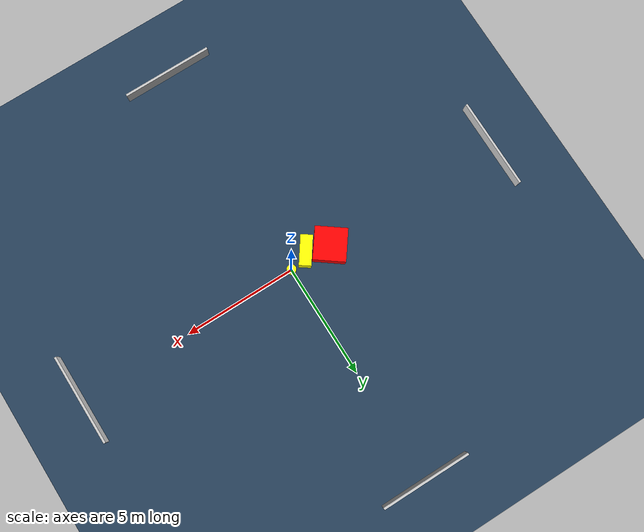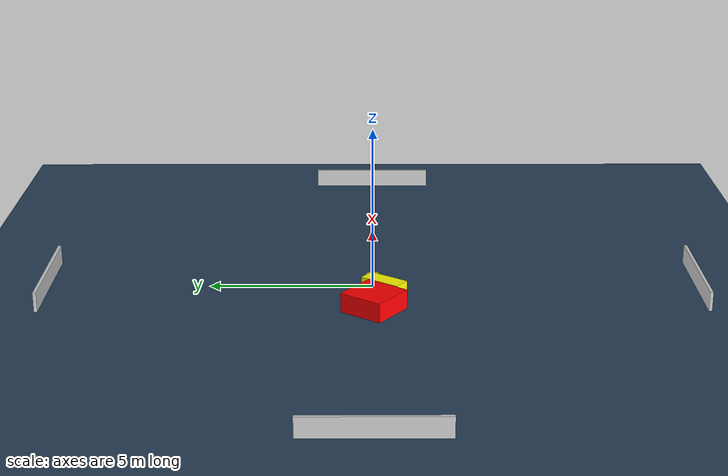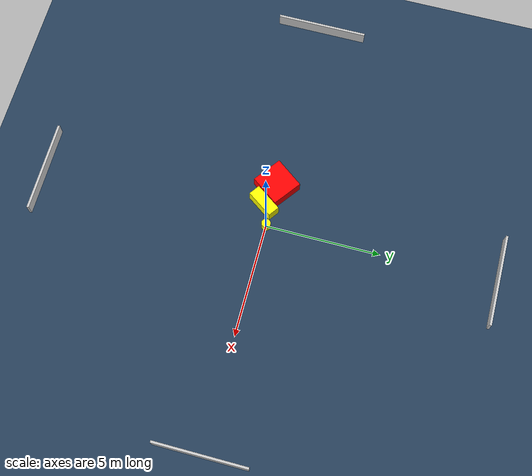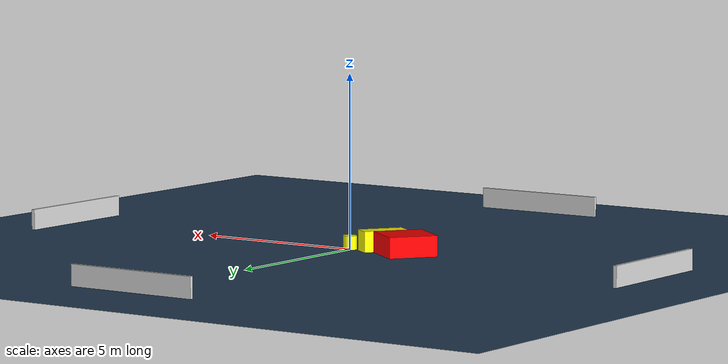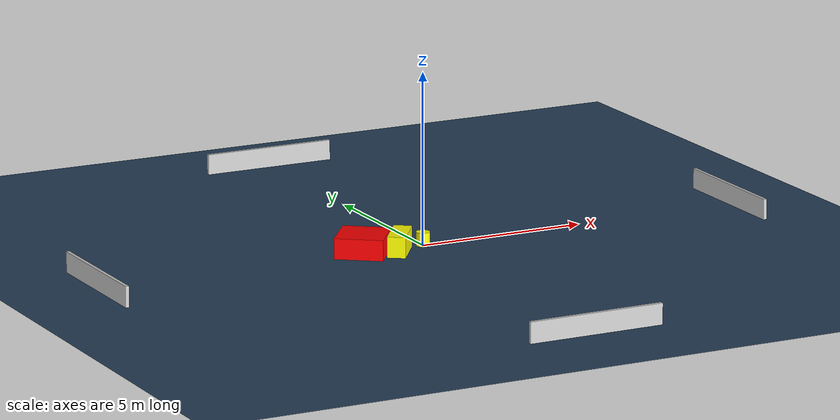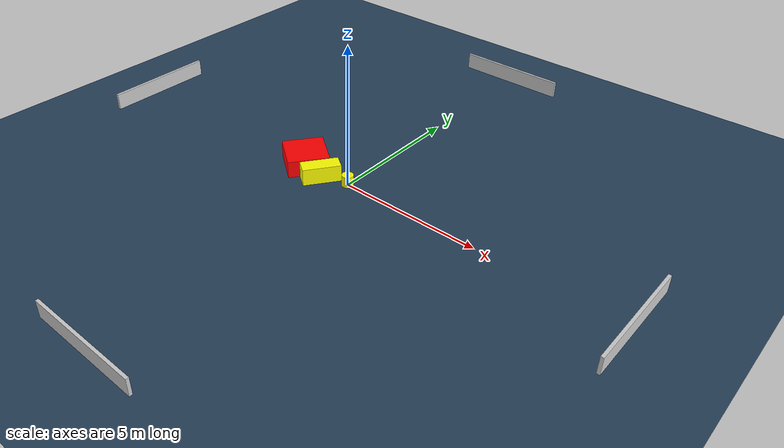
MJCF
<?xml version="1.0" ?>
<mujoco model="generated_environment">
  <option timestep="0.01" integrator="RK4" cone="elliptic"/>
  <default>
    <geom density="1"/>
  </default>
  <asset>
    <texture builtin="gradient" height="3072" name="skybox" rgb1="0.3 0.5 0.7" rgb2="0 0 0" type="skybox" width="512"/>
    <texture builtin="checker" height="300" name="groundplane" rgb1="0.2 0.3 0.4" rgb2="0.1 0.2 0.3" type="2d" width="300"/>
    <material name="groundplane" reflectance="0.2" texrepeat="5 5" texture="groundplane"/>
  </asset>
  <worldbody>
    <light dir="0 0 -1" directional="true" pos="0 0 1.5"/>
    <geom condim="3" friction="0.5 0.005 0.001" material="groundplane" name="floor" pos="0 0 0" size="0 0 0.05" type="plane"/>
    <body name="walls">
      <geom name="wall_1" condim="4" pos="-10.0 0.0 0.3" rgba="0.800000011920929 0.800000011920929 0.800000011920929 1.0" size="0.05 2.0 0.3" type="box"/>
      <geom name="wall_2" condim="4" pos="10.0 0.0 0.3" rgba="0.800000011920929 0.800000011920929 0.800000011920929 1.0" size="0.05 2.0 0.3" type="box"/>
      <geom name="wall_3" condim="4" pos="0.0 -10.0 0.3" rgba="0.800000011920929 0.800000011920929 0.800000011920929 1.0" size="2.0 0.05 0.3" type="box"/>
      <geom name="wall_4" condim="4" pos="0.0 10.0 0.3" rgba="0.800000011920929 0.800000011920929 0.800000011920929 1.0" size="2.0 0.05 0.3" type="box"/>
    </body>
    <body name="robot">
      <joint name="joint_x" type="slide" pos="0 0 0" axis="1 0 0"/>
      <joint name="joint_y" type="slide" pos="0 0 0" axis="0 1 0"/>
      <geom name="robot" type="cylinder" pos="0.0 0.0 0.2" size="0.2 0.2 0.0" mass="5.0" friction="1.0 0.005 0.0001" condim="4" rgba="1.0 1.0 0.0 1.0"/>
    </body>
    <body name="obstacle_1_movable">
      <geom name="obstacle_1_movable" condim="4" pos="-0.9072128634490507 -0.33370950202394384 0.3" euler="0 0 324.7681814290779" friction="0.0 0.005 0.001" rgba="1.0 1.0 0.0 1.0" size="0.26268955602792016 0.6530285729428787 0.3" type="box" mass="0.1"/>
      <joint type="free"/>
    </body>
    <body name="obstacle_2_static">
      <geom name="obstacle_2_static" condim="4" pos="-1.9026641030167 -0.01684512168420752 0.3" euler="0 0 143.4962497721466" friction="0.0 0.005 0.001" rgba="1.0 0.0 0.0 1.0" size="0.6945018631657567 0.7134683922537461 0.3" type="box"/>
    </body>
  </worldbody>
  <actuator>
    <motor name="actuator_x" joint="joint_x" gear="1" ctrlrange="-1 1"/>
    <motor name="actuator_y" joint="joint_y" gear="1" ctrlrange="-1 1"/>
  </actuator>
</mujoco>
